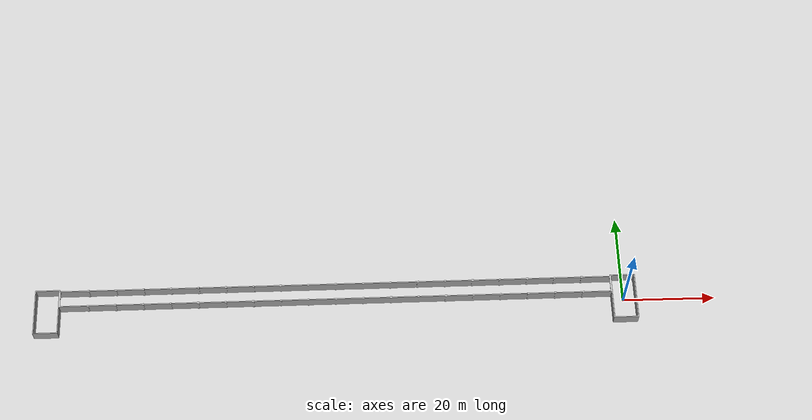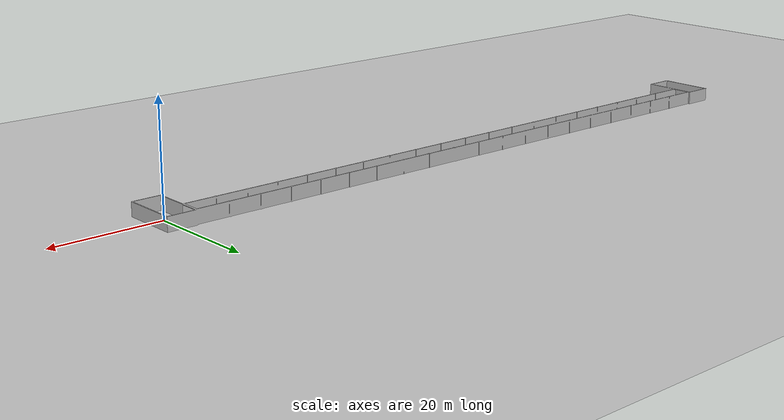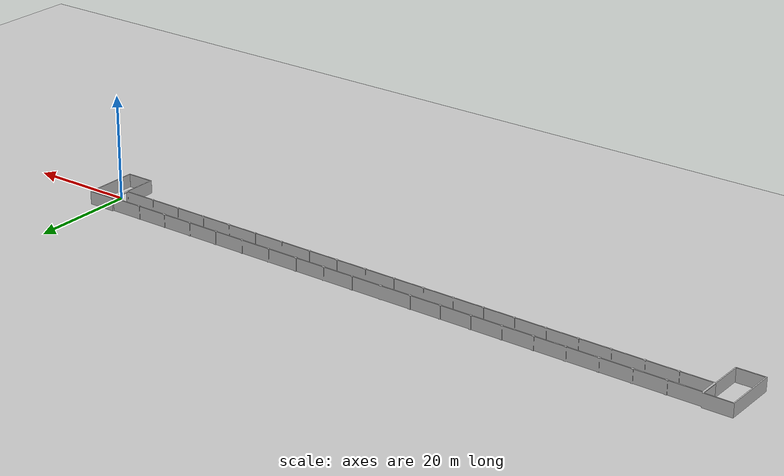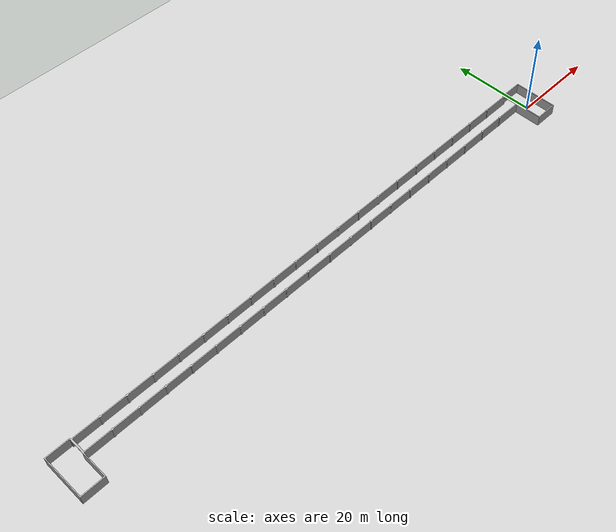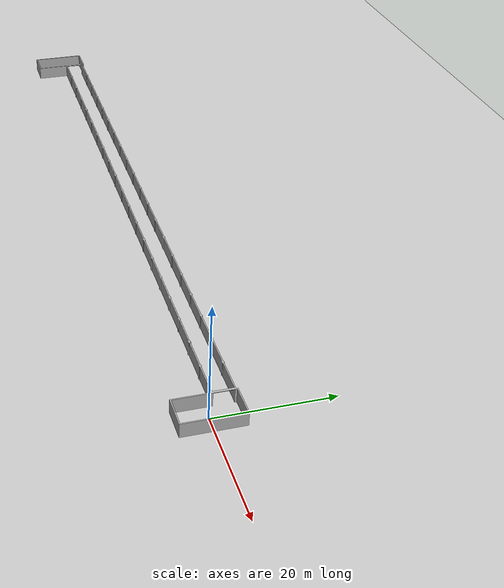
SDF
<?xml version='1.0' encoding='utf-8'?>
<sdf version="1.6">
  <world name="world">
    <gravity>0 0 -9.8</gravity>
    <physics default="0" name="default_physics" type="ode">
      <max_step_size>0.001</max_step_size>
      <real_time_factor>1</real_time_factor>
      <real_time_update_rate>1000</real_time_update_rate>
    </physics>
    <scene>
      <ambient>0.6 0.6 0.6 1</ambient>
      <background>0.4 0.4 0.4 1</background>
      <shadows>false</shadows>
    </scene>
    <include>
      <uri>model://sun</uri>
    </include>
    <include>
      <uri>model://ground_plane</uri>
      <pose>0 0 -0.1 0 -0 0</pose>
    </include>
    <model name="column_basement">
      <include>
        <uri>model://column_basement</uri>
        <static>true</static>
        <pose>-0.0 0.0 0.0 0.0 0.0 0.0</pose>
      </include>
    </model>
  </world>
</sdf>

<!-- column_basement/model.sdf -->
<sdf version="1.6">
  <model name="column_basement">
    <link name="link">
      <visual name="visual">
	    <geometry>
          <mesh>
            <uri>model://column_basement/meshes/column_basement.stl</uri>
          </mesh>
        </geometry>
      </visual>
      <collision name="collision">
        <geometry>
          <mesh>
            <uri>model://column_basement/meshes/column_basement.stl</uri>
          </mesh>
        </geometry>
      </collision>
</link>
  <static>1</static>
  </model>
</sdf>
